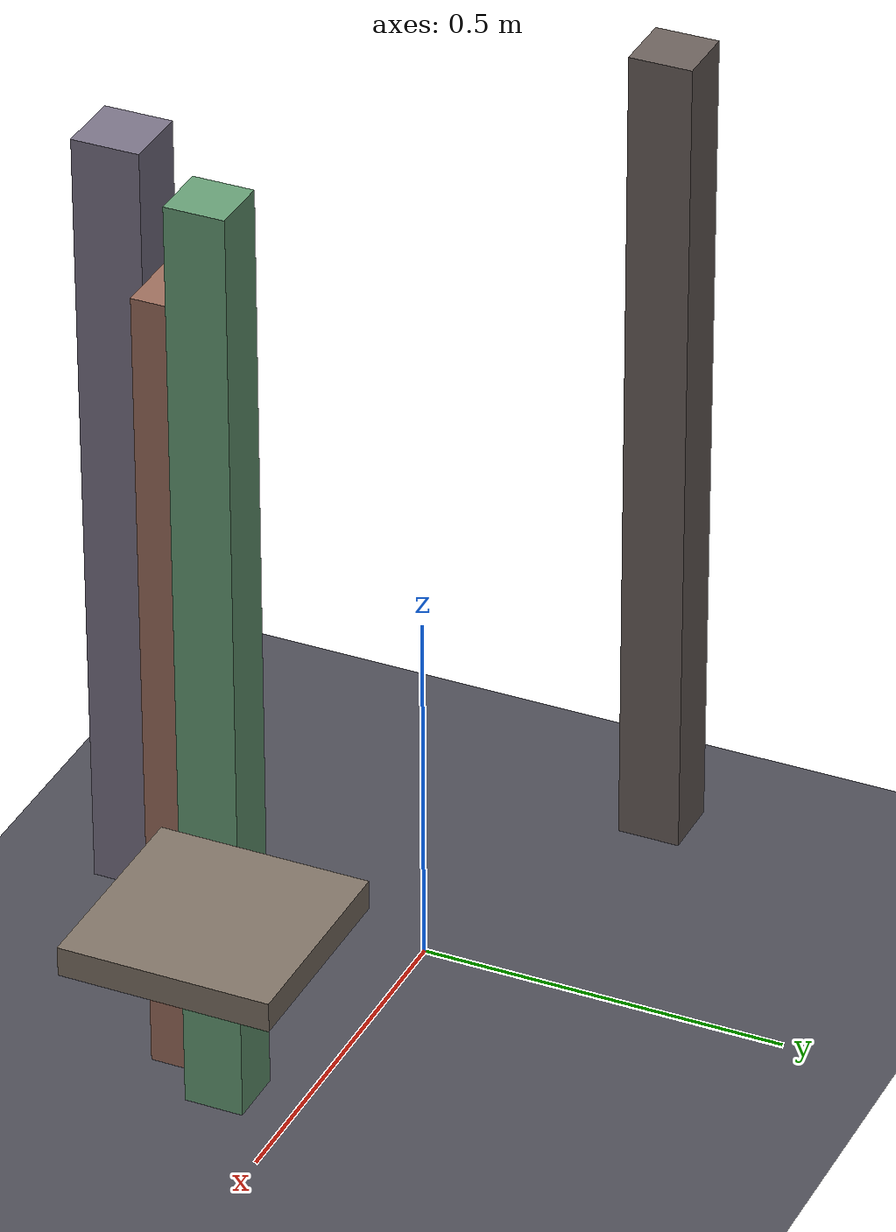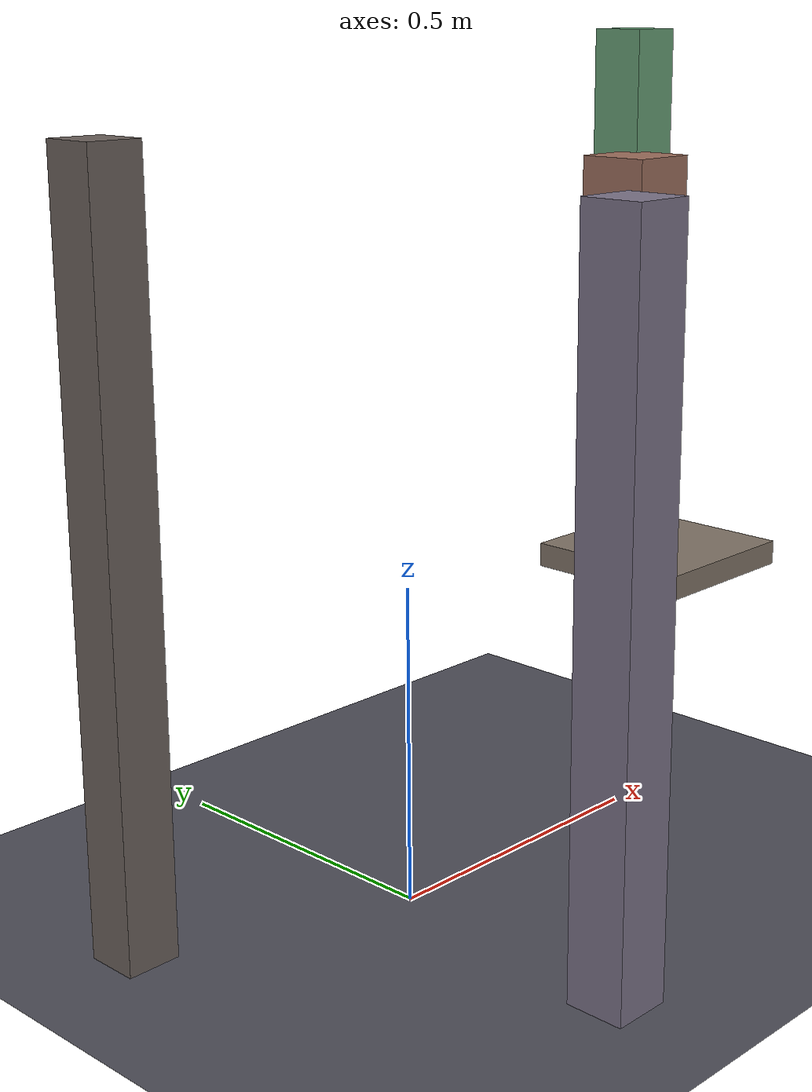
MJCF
<mujoco model="pillar_avoid_3">
  <compiler angle="radian" autolimits="true" boundmass="0" balanceinertia="true"/>
  <option impratio="10" gravity="0 0 -9.8" integrator="implicitfast" cone="elliptic" jacobian="sparse" noslip_iterations="4">
    <flag multiccd="enable" contact="enable" warmstart="enable"/>
  </option>
  <size njmax="6000" nconmax="6000"/>
  <visual><global offwidth="1280" offheight="720"/><map znear="0.001"/>
    <headlight ambient="0.45 0.45 0.45" diffuse="0.6 0.6 0.6"/></visual>
  <worldbody>
    <light pos="0.4 0.4 3" dir="0 0 -1" diffuse="0.7 0.7 0.7"/>
    <!-- Obstacle-avoidance variant 3: 4 tall PHYSICAL pillars; placements blocking >10%
         of exo-camera sightlines to the arm excluded (training view preserved). -->
    <body name="pillars" pos="0 0 0"><geom name="floor" type="plane" size="5 5 0.1" pos="0 0 0" rgba="0.30 0.30 0.34 1" contype="8" conaffinity="15"/><geom name="obj_pad" type="box" pos="0.60 0 0.42" size="0.14 0.14 0.02" rgba="0.5 0.45 0.4 1" contype="8" conaffinity="15"/><geom name="pillar_0" type="box" pos="0.306 -0.162 0.558" size="0.053 0.053 0.558" contype="8" conaffinity="15" rgba="0.61 0.43 0.36 1"/><geom name="pillar_3" type="box" pos="-0.399 0.162 0.581" size="0.043 0.043 0.581" contype="8" conaffinity="15" rgba="0.42 0.38 0.36 1"/><geom name="pillar_4" type="box" pos="-0.026 -0.420 0.551" size="0.047 0.047 0.551" contype="8" conaffinity="15" rgba="0.48 0.45 0.53 1"/><geom name="pillar_5" type="box" pos="0.379 -0.098 0.645" size="0.040 0.040 0.645" contype="8" conaffinity="15" rgba="0.40 0.62 0.46 1"/></body>
  </worldbody>
</mujoco>
